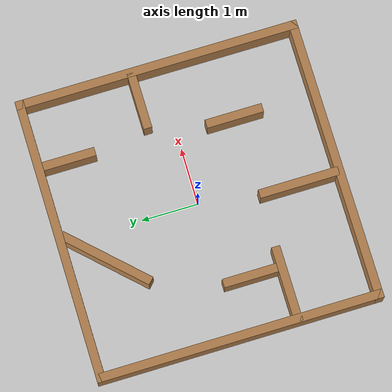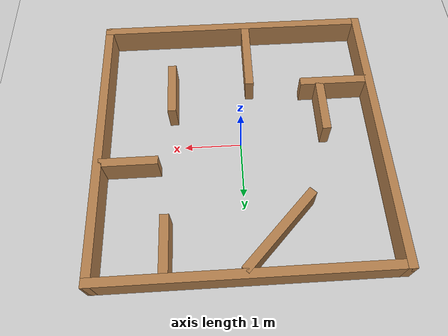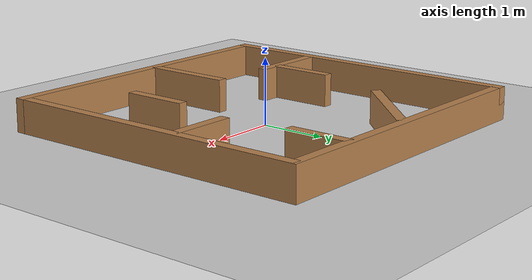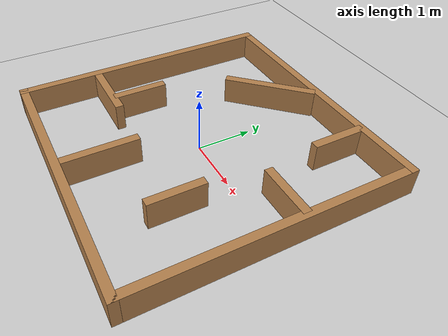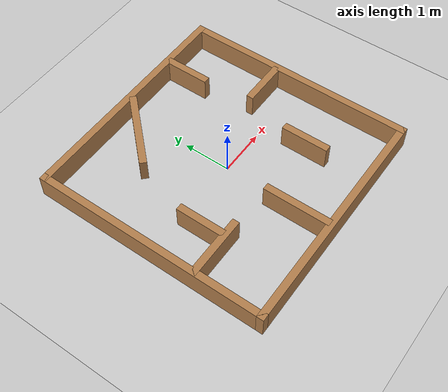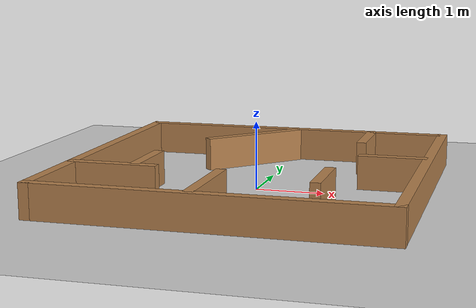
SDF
<sdf version='1.4'>
  <world name='default'>
    <!-- A global light source -->
    <include>
      <uri>model://sun</uri>
    </include>

    <!-- A ground plane -->
    <include>
      <uri>model://ground_plane</uri>
    </include>

    <physics type="ode">
      <real_time_update_rate>1000.0</real_time_update_rate>
      <max_step_size>0.001</max_step_size>
      <real_time_factor>1</real_time_factor>
      <ode>
        <solver>
          <type>quick</type>
          <iters>150</iters>
          <precon_iters>0</precon_iters>
          <sor>1.400000</sor>
          <use_dynamic_moi_rescaling>1</use_dynamic_moi_rescaling>
        </solver>
        <constraints>
          <cfm>0.00001</cfm>
          <erp>0.2</erp>
          <contact_max_correcting_vel>2000.000000</contact_max_correcting_vel>
          <contact_surface_layer>0.01000</contact_surface_layer>
        </constraints>
      </ode>
    </physics>

    <!-- Load model -->
    <include>
      <uri>model://plaza</uri>
    </include>

    <scene>
      <ambient>0.4 0.4 0.4 1</ambient>
      <background>0.7 0.7 0.7 1</background>
      <shadows>true</shadows>
    </scene>

    <gui fullscreen='0'>
      <camera name='user_camera'>
        <pose>0.0 0.0 17.0 0 1.5708 0</pose>
        <view_controller>orbit</view_controller>
      </camera>
    </gui>
  </world>
</sdf>

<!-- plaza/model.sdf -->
<sdf version='1.7'>
  <model name='plaza'>
    <link name='Wall_0'>
      <pose>-2.425 0 0 0 -0 1.5708</pose>
      <self_collide>0</self_collide>
      <enable_wind>0</enable_wind>
      <kinematic>0</kinematic>
      <visual name='Wall_0_Visual'>
        <pose>0 0 0.25 0 -0 0</pose>
        <geometry>
          <box>
            <size>5 0.15 0.5</size>
          </box>
        </geometry>
        <material>
          <script>
            <uri>file://media/materials/scripts/gazebo.material</uri>
            <name>Gazebo/Wood</name>
          </script>
          <ambient>1 1 1 1</ambient>
          <shader type='pixel'/>
        </material>
        <transparency>0</transparency>
        <cast_shadows>1</cast_shadows>
      </visual>
      <collision name='Wall_0_Collision'>
        <laser_retro>0</laser_retro>
        <max_contacts>10</max_contacts>
        <pose>0 0 0.25 0 -0 0</pose>
        <geometry>
          <box>
            <size>5 0.15 0.5</size>
          </box>
        </geometry>
        <surface>
          <friction>
            <ode>
              <mu>1</mu>
              <mu2>1</mu2>
              <fdir1>0 0 0</fdir1>
              <slip1>0</slip1>
              <slip2>0</slip2>
            </ode>
            <torsional>
              <coefficient>1</coefficient>
              <patch_radius>0</patch_radius>
              <surface_radius>0</surface_radius>
              <use_patch_radius>1</use_patch_radius>
              <ode>
                <slip>0</slip>
              </ode>
            </torsional>
          </friction>
          <bounce>
            <restitution_coefficient>0</restitution_coefficient>
            <threshold>1e+06</threshold>
          </bounce>
          <contact>
            <collide_without_contact>0</collide_without_contact>
            <collide_without_contact_bitmask>1</collide_without_contact_bitmask>
            <collide_bitmask>1</collide_bitmask>
            <ode>
              <soft_cfm>0</soft_cfm>
              <soft_erp>0.2</soft_erp>
              <kp>1e+13</kp>
              <kd>1</kd>
              <max_vel>0.01</max_vel>
              <min_depth>0</min_depth>
            </ode>
            <bullet>
              <split_impulse>1</split_impulse>
              <split_impulse_penetration_threshold>-0.01</split_impulse_penetration_threshold>
              <soft_cfm>0</soft_cfm>
              <soft_erp>0.2</soft_erp>
              <kp>1e+13</kp>
              <kd>1</kd>
            </bullet>
          </contact>
        </surface>
      </collision>
    </link>
    <link name='Wall_11'>
      <pose>-1.81775 -1.00788 -0 0 -0 0</pose>
      <self_collide>0</self_collide>
      <enable_wind>0</enable_wind>
      <kinematic>0</kinematic>
      <inertial>
        <inertia>
          <ixx>0</ixx>
          <ixy>0</ixy>
          <ixz>0</ixz>
          <iyy>0</iyy>
          <iyz>0</iyz>
          <izz>0</izz>
        </inertia>
        <mass>0</mass>
        <pose>0 0 0 0 -0 0</pose>
      </inertial>
      <visual name='Wall_11_Visual'>
        <pose>0 0 0.25 0 -0 0</pose>
        <geometry>
          <box>
            <size>1.32645 0.15 0.5</size>
          </box>
        </geometry>
        <material>
          <script>
            <uri>file://media/materials/scripts/gazebo.material</uri>
            <name>Gazebo/Wood</name>
          </script>
          <ambient>1 1 1 1</ambient>
          <shader type='pixel'/>
        </material>
        <transparency>0</transparency>
        <cast_shadows>1</cast_shadows>
      </visual>
      <collision name='Wall_11_Collision'>
        <laser_retro>0</laser_retro>
        <max_contacts>10</max_contacts>
        <pose>0 0 0.25 0 -0 0</pose>
        <geometry>
          <box>
            <size>1.32645 0.15 0.5</size>
          </box>
        </geometry>
        <surface>
          <friction>
            <ode>
              <mu>1</mu>
              <mu2>1</mu2>
              <fdir1>0 0 0</fdir1>
              <slip1>0</slip1>
              <slip2>0</slip2>
            </ode>
            <torsional>
              <coefficient>1</coefficient>
              <patch_radius>0</patch_radius>
              <surface_radius>0</surface_radius>
              <use_patch_radius>1</use_patch_radius>
              <ode>
                <slip>0</slip>
              </ode>
            </torsional>
          </friction>
          <bounce>
            <restitution_coefficient>0</restitution_coefficient>
            <threshold>1e+06</threshold>
          </bounce>
          <contact>
            <collide_without_contact>0</collide_without_contact>
            <collide_without_contact_bitmask>1</collide_without_contact_bitmask>
            <collide_bitmask>1</collide_bitmask>
            <ode>
              <soft_cfm>0</soft_cfm>
              <soft_erp>0.2</soft_erp>
              <kp>1e+13</kp>
              <kd>1</kd>
              <max_vel>0.01</max_vel>
              <min_depth>0</min_depth>
            </ode>
            <bullet>
              <split_impulse>1</split_impulse>
              <split_impulse_penetration_threshold>-0.01</split_impulse_penetration_threshold>
              <soft_cfm>0</soft_cfm>
              <soft_erp>0.2</soft_erp>
              <kp>1e+13</kp>
              <kd>1</kd>
            </bullet>
          </contact>
        </surface>
      </collision>
    </link>
    <link name='Wall_13'>
      <pose>-0.219999 -1.71015 0 0 0 -1.5708</pose>
      <self_collide>0</self_collide>
      <enable_wind>0</enable_wind>
      <kinematic>0</kinematic>
      <inertial>
        <inertia>
          <ixx>0</ixx>
          <ixy>0</ixy>
          <ixz>0</ixz>
          <iyy>0</iyy>
          <iyz>0</iyz>
          <izz>0</izz>
        </inertia>
        <mass>0</mass>
        <pose>0 0 0 0 -0 0</pose>
      </inertial>
      <visual name='Wall_13_Visual'>
        <pose>0 0 0.25 0 -0 0</pose>
        <geometry>
          <box>
            <size>1.39986 0.15 0.5</size>
          </box>
        </geometry>
        <material>
          <script>
            <uri>file://media/materials/scripts/gazebo.material</uri>
            <name>Gazebo/Wood</name>
          </script>
          <ambient>1 1 1 1</ambient>
          <shader type='pixel'/>
        </material>
        <transparency>0</transparency>
        <cast_shadows>1</cast_shadows>
      </visual>
      <collision name='Wall_13_Collision'>
        <laser_retro>0</laser_retro>
        <max_contacts>10</max_contacts>
        <pose>0 0 0.25 0 -0 0</pose>
        <geometry>
          <box>
            <size>1.39986 0.15 0.5</size>
          </box>
        </geometry>
        <surface>
          <friction>
            <ode>
              <mu>1</mu>
              <mu2>1</mu2>
              <fdir1>0 0 0</fdir1>
              <slip1>0</slip1>
              <slip2>0</slip2>
            </ode>
            <torsional>
              <coefficient>1</coefficient>
              <patch_radius>0</patch_radius>
              <surface_radius>0</surface_radius>
              <use_patch_radius>1</use_patch_radius>
              <ode>
                <slip>0</slip>
              </ode>
            </torsional>
          </friction>
          <bounce>
            <restitution_coefficient>0</restitution_coefficient>
            <threshold>1e+06</threshold>
          </bounce>
          <contact>
            <collide_without_contact>0</collide_without_contact>
            <collide_without_contact_bitmask>1</collide_without_contact_bitmask>
            <collide_bitmask>1</collide_bitmask>
            <ode>
              <soft_cfm>0</soft_cfm>
              <soft_erp>0.2</soft_erp>
              <kp>1e+13</kp>
              <kd>1</kd>
              <max_vel>0.01</max_vel>
              <min_depth>0</min_depth>
            </ode>
            <bullet>
              <split_impulse>1</split_impulse>
              <split_impulse_penetration_threshold>-0.01</split_impulse_penetration_threshold>
              <soft_cfm>0</soft_cfm>
              <soft_erp>0.2</soft_erp>
              <kp>1e+13</kp>
              <kd>1</kd>
            </bullet>
          </contact>
        </surface>
      </collision>
    </link>
    <link name='Wall_15'>
      <pose>1.195 -1.002 0 0 -0 1.5708</pose>
      <self_collide>0</self_collide>
      <enable_wind>0</enable_wind>
      <kinematic>0</kinematic>
      <visual name='Wall_15_Visual'>
        <pose>0 0 0.25 0 -0 0</pose>
        <geometry>
          <box>
            <size>1 0.15 0.5</size>
          </box>
        </geometry>
        <material>
          <script>
            <uri>file://media/materials/scripts/gazebo.material</uri>
            <name>Gazebo/Wood</name>
          </script>
          <ambient>1 1 1 1</ambient>
          <shader type='pixel'/>
        </material>
        <transparency>0</transparency>
        <cast_shadows>1</cast_shadows>
      </visual>
      <collision name='Wall_15_Collision'>
        <laser_retro>0</laser_retro>
        <max_contacts>10</max_contacts>
        <pose>0 0 0.25 0 -0 0</pose>
        <geometry>
          <box>
            <size>1 0.15 0.5</size>
          </box>
        </geometry>
        <surface>
          <friction>
            <ode>
              <mu>1</mu>
              <mu2>1</mu2>
              <fdir1>0 0 0</fdir1>
              <slip1>0</slip1>
              <slip2>0</slip2>
            </ode>
            <torsional>
              <coefficient>1</coefficient>
              <patch_radius>0</patch_radius>
              <surface_radius>0</surface_radius>
              <use_patch_radius>1</use_patch_radius>
              <ode>
                <slip>0</slip>
              </ode>
            </torsional>
          </friction>
          <bounce>
            <restitution_coefficient>0</restitution_coefficient>
            <threshold>1e+06</threshold>
          </bounce>
          <contact>
            <collide_without_contact>0</collide_without_contact>
            <collide_without_contact_bitmask>1</collide_without_contact_bitmask>
            <collide_bitmask>1</collide_bitmask>
            <ode>
              <soft_cfm>0</soft_cfm>
              <soft_erp>0.2</soft_erp>
              <kp>1e+13</kp>
              <kd>1</kd>
              <max_vel>0.01</max_vel>
              <min_depth>0</min_depth>
            </ode>
            <bullet>
              <split_impulse>1</split_impulse>
              <split_impulse_penetration_threshold>-0.01</split_impulse_penetration_threshold>
              <soft_cfm>0</soft_cfm>
              <soft_erp>0.2</soft_erp>
              <kp>1e+13</kp>
              <kd>1</kd>
            </bullet>
          </contact>
        </surface>
      </collision>
    </link>
    <link name='Wall_17'>
      <pose>1.288 1.93 0 0 0 -1.5708</pose>
      <self_collide>0</self_collide>
      <enable_wind>0</enable_wind>
      <kinematic>0</kinematic>
      <visual name='Wall_17_Visual'>
        <pose>0 0 0.25 0 -0 0</pose>
        <geometry>
          <box>
            <size>1 0.15 0.5</size>
          </box>
        </geometry>
        <material>
          <script>
            <uri>file://media/materials/scripts/gazebo.material</uri>
            <name>Gazebo/Wood</name>
          </script>
          <ambient>1 1 1 1</ambient>
          <shader type='pixel'/>
        </material>
        <transparency>0</transparency>
        <cast_shadows>1</cast_shadows>
      </visual>
      <collision name='Wall_17_Collision'>
        <laser_retro>0</laser_retro>
        <max_contacts>10</max_contacts>
        <pose>0 0 0.25 0 -0 0</pose>
        <geometry>
          <box>
            <size>1 0.15 0.5</size>
          </box>
        </geometry>
        <surface>
          <friction>
            <ode>
              <mu>1</mu>
              <mu2>1</mu2>
              <fdir1>0 0 0</fdir1>
              <slip1>0</slip1>
              <slip2>0</slip2>
            </ode>
            <torsional>
              <coefficient>1</coefficient>
              <patch_radius>0</patch_radius>
              <surface_radius>0</surface_radius>
              <use_patch_radius>1</use_patch_radius>
              <ode>
                <slip>0</slip>
              </ode>
            </torsional>
          </friction>
          <bounce>
            <restitution_coefficient>0</restitution_coefficient>
            <threshold>1e+06</threshold>
          </bounce>
          <contact>
            <collide_without_contact>0</collide_without_contact>
            <collide_without_contact_bitmask>1</collide_without_contact_bitmask>
            <collide_bitmask>1</collide_bitmask>
            <ode>
              <soft_cfm>0</soft_cfm>
              <soft_erp>0.2</soft_erp>
              <kp>1e+13</kp>
              <kd>1</kd>
              <max_vel>0.01</max_vel>
              <min_depth>0</min_depth>
            </ode>
            <bullet>
              <split_impulse>1</split_impulse>
              <split_impulse_penetration_threshold>-0.01</split_impulse_penetration_threshold>
              <soft_cfm>0</soft_cfm>
              <soft_erp>0.2</soft_erp>
              <kp>1e+13</kp>
              <kd>1</kd>
            </bullet>
          </contact>
        </surface>
      </collision>
    </link>
    <link name='Wall_19'>
      <pose>1.91128 0.4632 0 0 -0 0</pose>
      <self_collide>0</self_collide>
      <enable_wind>0</enable_wind>
      <kinematic>0</kinematic>
      <visual name='Wall_19_Visual'>
        <pose>0 0 0.25 0 -0 0</pose>
        <geometry>
          <box>
            <size>1 0.15 0.5</size>
          </box>
        </geometry>
        <material>
          <script>
            <uri>file://media/materials/scripts/gazebo.material</uri>
            <name>Gazebo/Wood</name>
          </script>
          <ambient>1 1 1 1</ambient>
          <shader type='pixel'/>
        </material>
        <transparency>0</transparency>
        <cast_shadows>1</cast_shadows>
      </visual>
      <collision name='Wall_19_Collision'>
        <laser_retro>0</laser_retro>
        <max_contacts>10</max_contacts>
        <pose>0 0 0.25 0 -0 0</pose>
        <geometry>
          <box>
            <size>1 0.15 0.5</size>
          </box>
        </geometry>
        <surface>
          <friction>
            <ode>
              <mu>1</mu>
              <mu2>1</mu2>
              <fdir1>0 0 0</fdir1>
              <slip1>0</slip1>
              <slip2>0</slip2>
            </ode>
            <torsional>
              <coefficient>1</coefficient>
              <patch_radius>0</patch_radius>
              <surface_radius>0</surface_radius>
              <use_patch_radius>1</use_patch_radius>
              <ode>
                <slip>0</slip>
              </ode>
            </torsional>
          </friction>
          <bounce>
            <restitution_coefficient>0</restitution_coefficient>
            <threshold>1e+06</threshold>
          </bounce>
          <contact>
            <collide_without_contact>0</collide_without_contact>
            <collide_without_contact_bitmask>1</collide_without_contact_bitmask>
            <collide_bitmask>1</collide_bitmask>
            <ode>
              <soft_cfm>0</soft_cfm>
              <soft_erp>0.2</soft_erp>
              <kp>1e+13</kp>
              <kd>1</kd>
              <max_vel>0.01</max_vel>
              <min_depth>0</min_depth>
            </ode>
            <bullet>
              <split_impulse>1</split_impulse>
              <split_impulse_penetration_threshold>-0.01</split_impulse_penetration_threshold>
              <soft_cfm>0</soft_cfm>
              <soft_erp>0.2</soft_erp>
              <kp>1e+13</kp>
              <kd>1</kd>
            </bullet>
          </contact>
        </surface>
      </collision>
    </link>
    <link name='Wall_2'>
      <pose>0 2.425 0 0 -0 0</pose>
      <self_collide>0</self_collide>
      <enable_wind>0</enable_wind>
      <kinematic>0</kinematic>
      <visual name='Wall_2_Visual'>
        <pose>0 0 0.25 0 -0 0</pose>
        <geometry>
          <box>
            <size>5 0.15 0.5</size>
          </box>
        </geometry>
        <material>
          <script>
            <uri>file://media/materials/scripts/gazebo.material</uri>
            <name>Gazebo/Wood</name>
          </script>
          <ambient>1 1 1 1</ambient>
          <shader type='pixel'/>
        </material>
        <transparency>0</transparency>
        <cast_shadows>1</cast_shadows>
      </visual>
      <collision name='Wall_2_Collision'>
        <laser_retro>0</laser_retro>
        <max_contacts>10</max_contacts>
        <pose>0 0 0.25 0 -0 0</pose>
        <geometry>
          <box>
            <size>5 0.15 0.5</size>
          </box>
        </geometry>
        <surface>
          <friction>
            <ode>
              <mu>1</mu>
              <mu2>1</mu2>
              <fdir1>0 0 0</fdir1>
              <slip1>0</slip1>
              <slip2>0</slip2>
            </ode>
            <torsional>
              <coefficient>1</coefficient>
              <patch_radius>0</patch_radius>
              <surface_radius>0</surface_radius>
              <use_patch_radius>1</use_patch_radius>
              <ode>
                <slip>0</slip>
              </ode>
            </torsional>
          </friction>
          <bounce>
            <restitution_coefficient>0</restitution_coefficient>
            <threshold>1e+06</threshold>
          </bounce>
          <contact>
            <collide_without_contact>0</collide_without_contact>
            <collide_without_contact_bitmask>1</collide_without_contact_bitmask>
            <collide_bitmask>1</collide_bitmask>
            <ode>
              <soft_cfm>0</soft_cfm>
              <soft_erp>0.2</soft_erp>
              <kp>1e+13</kp>
              <kd>1</kd>
              <max_vel>0.01</max_vel>
              <min_depth>0</min_depth>
            </ode>
            <bullet>
              <split_impulse>1</split_impulse>
              <split_impulse_penetration_threshold>-0.01</split_impulse_penetration_threshold>
              <soft_cfm>0</soft_cfm>
              <soft_erp>0.2</soft_erp>
              <kp>1e+13</kp>
              <kd>1</kd>
            </bullet>
          </contact>
        </surface>
      </collision>
    </link>
    <link name='Wall_3'>
      <pose>2.425 0 0 0 0 -1.5708</pose>
      <self_collide>0</self_collide>
      <enable_wind>0</enable_wind>
      <kinematic>0</kinematic>
      <visual name='Wall_3_Visual'>
        <pose>0 0 0.25 0 -0 0</pose>
        <geometry>
          <box>
            <size>5 0.15 0.5</size>
          </box>
        </geometry>
        <material>
          <script>
            <uri>file://media/materials/scripts/gazebo.material</uri>
            <name>Gazebo/Wood</name>
          </script>
          <ambient>1 1 1 1</ambient>
          <shader type='pixel'/>
        </material>
        <transparency>0</transparency>
        <cast_shadows>1</cast_shadows>
      </visual>
      <collision name='Wall_3_Collision'>
        <laser_retro>0</laser_retro>
        <max_contacts>10</max_contacts>
        <pose>0 0 0.25 0 -0 0</pose>
        <geometry>
          <box>
            <size>5 0.15 0.5</size>
          </box>
        </geometry>
        <surface>
          <friction>
            <ode>
              <mu>1</mu>
              <mu2>1</mu2>
              <fdir1>0 0 0</fdir1>
              <slip1>0</slip1>
              <slip2>0</slip2>
            </ode>
            <torsional>
              <coefficient>1</coefficient>
              <patch_radius>0</patch_radius>
              <surface_radius>0</surface_radius>
              <use_patch_radius>1</use_patch_radius>
              <ode>
                <slip>0</slip>
              </ode>
            </torsional>
          </friction>
          <bounce>
            <restitution_coefficient>0</restitution_coefficient>
            <threshold>1e+06</threshold>
          </bounce>
          <contact>
            <collide_without_contact>0</collide_without_contact>
            <collide_without_contact_bitmask>1</collide_without_contact_bitmask>
            <collide_bitmask>1</collide_bitmask>
            <ode>
              <soft_cfm>0</soft_cfm>
              <soft_erp>0.2</soft_erp>
              <kp>1e+13</kp>
              <kd>1</kd>
              <max_vel>0.01</max_vel>
              <min_depth>0</min_depth>
            </ode>
            <bullet>
              <split_impulse>1</split_impulse>
              <split_impulse_penetration_threshold>-0.01</split_impulse_penetration_threshold>
              <soft_cfm>0</soft_cfm>
              <soft_erp>0.2</soft_erp>
              <kp>1e+13</kp>
              <kd>1</kd>
            </bullet>
          </contact>
        </surface>
      </collision>
    </link>
    <link name='Wall_4'>
      <pose>0 -2.425 0 0 -0 3.14159</pose>
      <self_collide>0</self_collide>
      <enable_wind>0</enable_wind>
      <kinematic>0</kinematic>
      <visual name='Wall_4_Visual'>
        <pose>0 0 0.25 0 -0 0</pose>
        <geometry>
          <box>
            <size>5 0.15 0.5</size>
          </box>
        </geometry>
        <material>
          <script>
            <uri>file://media/materials/scripts/gazebo.material</uri>
            <name>Gazebo/Wood</name>
          </script>
          <ambient>1 1 1 1</ambient>
          <shader type='pixel'/>
        </material>
        <transparency>0</transparency>
        <cast_shadows>1</cast_shadows>
      </visual>
      <collision name='Wall_4_Collision'>
        <laser_retro>0</laser_retro>
        <max_contacts>10</max_contacts>
        <pose>0 0 0.25 0 -0 0</pose>
        <geometry>
          <box>
            <size>5 0.15 0.5</size>
          </box>
        </geometry>
        <surface>
          <friction>
            <ode>
              <mu>1</mu>
              <mu2>1</mu2>
              <fdir1>0 0 0</fdir1>
              <slip1>0</slip1>
              <slip2>0</slip2>
            </ode>
            <torsional>
              <coefficient>1</coefficient>
              <patch_radius>0</patch_radius>
              <surface_radius>0</surface_radius>
              <use_patch_radius>1</use_patch_radius>
              <ode>
                <slip>0</slip>
              </ode>
            </torsional>
          </friction>
          <bounce>
            <restitution_coefficient>0</restitution_coefficient>
            <threshold>1e+06</threshold>
          </bounce>
          <contact>
            <collide_without_contact>0</collide_without_contact>
            <collide_without_contact_bitmask>1</collide_without_contact_bitmask>
            <collide_bitmask>1</collide_bitmask>
            <ode>
              <soft_cfm>0</soft_cfm>
              <soft_erp>0.2</soft_erp>
              <kp>1e+13</kp>
              <kd>1</kd>
              <max_vel>0.01</max_vel>
              <min_depth>0</min_depth>
            </ode>
            <bullet>
              <split_impulse>1</split_impulse>
              <split_impulse_penetration_threshold>-0.01</split_impulse_penetration_threshold>
              <soft_cfm>0</soft_cfm>
              <soft_erp>0.2</soft_erp>
              <kp>1e+13</kp>
              <kd>1</kd>
            </bullet>
          </contact>
        </surface>
      </collision>
    </link>
    <link name='Wall_7'>
      <pose>-0.520795 1.76731 0 0 -0 0.801804</pose>
      <self_collide>0</self_collide>
      <enable_wind>0</enable_wind>
      <kinematic>0</kinematic>
      <inertial>
        <inertia>
          <ixx>0</ixx>
          <ixy>0</ixy>
          <ixz>0</ixz>
          <iyy>0</iyy>
          <iyz>0</iyz>
          <izz>0</izz>
        </inertia>
        <mass>0</mass>
        <pose>0 0 0 0 -0 0</pose>
      </inertial>
      <visual name='Wall_7_Visual'>
        <pose>0 0 0.25 0 -0 0</pose>
        <geometry>
          <box>
            <size>1.6984 0.15 0.5</size>
          </box>
        </geometry>
        <material>
          <script>
            <uri>file://media/materials/scripts/gazebo.material</uri>
            <name>Gazebo/Wood</name>
          </script>
          <ambient>1 1 1 1</ambient>
          <shader type='pixel'/>
        </material>
        <transparency>0</transparency>
        <cast_shadows>1</cast_shadows>
      </visual>
      <collision name='Wall_7_Collision'>
        <laser_retro>0</laser_retro>
        <max_contacts>10</max_contacts>
        <pose>0 0 0.25 0 -0 0</pose>
        <geometry>
          <box>
            <size>1.6984 0.15 0.5</size>
          </box>
        </geometry>
        <surface>
          <friction>
            <ode>
              <mu>1</mu>
              <mu2>1</mu2>
              <fdir1>0 0 0</fdir1>
              <slip1>0</slip1>
              <slip2>0</slip2>
            </ode>
            <torsional>
              <coefficient>1</coefficient>
              <patch_radius>0</patch_radius>
              <surface_radius>0</surface_radius>
              <use_patch_radius>1</use_patch_radius>
              <ode>
                <slip>0</slip>
              </ode>
            </torsional>
          </friction>
          <bounce>
            <restitution_coefficient>0</restitution_coefficient>
            <threshold>1e+06</threshold>
          </bounce>
          <contact>
            <collide_without_contact>0</collide_without_contact>
            <collide_without_contact_bitmask>1</collide_without_contact_bitmask>
            <collide_bitmask>1</collide_bitmask>
            <ode>
              <soft_cfm>0</soft_cfm>
              <soft_erp>0.2</soft_erp>
              <kp>1e+13</kp>
              <kd>1</kd>
              <max_vel>0.01</max_vel>
              <min_depth>0</min_depth>
            </ode>
            <bullet>
              <split_impulse>1</split_impulse>
              <split_impulse_penetration_threshold>-0.01</split_impulse_penetration_threshold>
              <soft_cfm>0</soft_cfm>
              <soft_erp>0.2</soft_erp>
              <kp>1e+13</kp>
              <kd>1</kd>
            </bullet>
          </contact>
        </surface>
      </collision>
    </link>
    <link name='Wall_9'>
      <pose>-1.502 -0.485244 0 0 0 -1.5708</pose>
      <self_collide>0</self_collide>
      <enable_wind>0</enable_wind>
      <kinematic>0</kinematic>
      <visual name='Wall_9_Visual'>
        <pose>0 0 0.25 0 -0 0</pose>
        <geometry>
          <box>
            <size>1 0.15 0.5</size>
          </box>
        </geometry>
        <material>
          <script>
            <uri>file://media/materials/scripts/gazebo.material</uri>
            <name>Gazebo/Wood</name>
          </script>
          <ambient>1 1 1 1</ambient>
          <shader type='pixel'/>
        </material>
        <transparency>0</transparency>
        <cast_shadows>1</cast_shadows>
      </visual>
      <collision name='Wall_9_Collision'>
        <laser_retro>0</laser_retro>
        <max_contacts>10</max_contacts>
        <pose>0 0 0.25 0 -0 0</pose>
        <geometry>
          <box>
            <size>1 0.15 0.5</size>
          </box>
        </geometry>
        <surface>
          <friction>
            <ode>
              <mu>1</mu>
              <mu2>1</mu2>
              <fdir1>0 0 0</fdir1>
              <slip1>0</slip1>
              <slip2>0</slip2>
            </ode>
            <torsional>
              <coefficient>1</coefficient>
              <patch_radius>0</patch_radius>
              <surface_radius>0</surface_radius>
              <use_patch_radius>1</use_patch_radius>
              <ode>
                <slip>0</slip>
              </ode>
            </torsional>
          </friction>
          <bounce>
            <restitution_coefficient>0</restitution_coefficient>
            <threshold>1e+06</threshold>
          </bounce>
          <contact>
            <collide_without_contact>0</collide_without_contact>
            <collide_without_contact_bitmask>1</collide_without_contact_bitmask>
            <collide_bitmask>1</collide_bitmask>
            <ode>
              <soft_cfm>0</soft_cfm>
              <soft_erp>0.2</soft_erp>
              <kp>1e+13</kp>
              <kd>1</kd>
              <max_vel>0.01</max_vel>
              <min_depth>0</min_depth>
            </ode>
            <bullet>
              <split_impulse>1</split_impulse>
              <split_impulse_penetration_threshold>-0.01</split_impulse_penetration_threshold>
              <soft_cfm>0</soft_cfm>
              <soft_erp>0.2</soft_erp>
              <kp>1e+13</kp>
              <kd>1</kd>
            </bullet>
          </contact>
        </surface>
      </collision>
    </link>
    <static>1</static>
    <allow_auto_disable>1</allow_auto_disable>
  </model>
</sdf>
